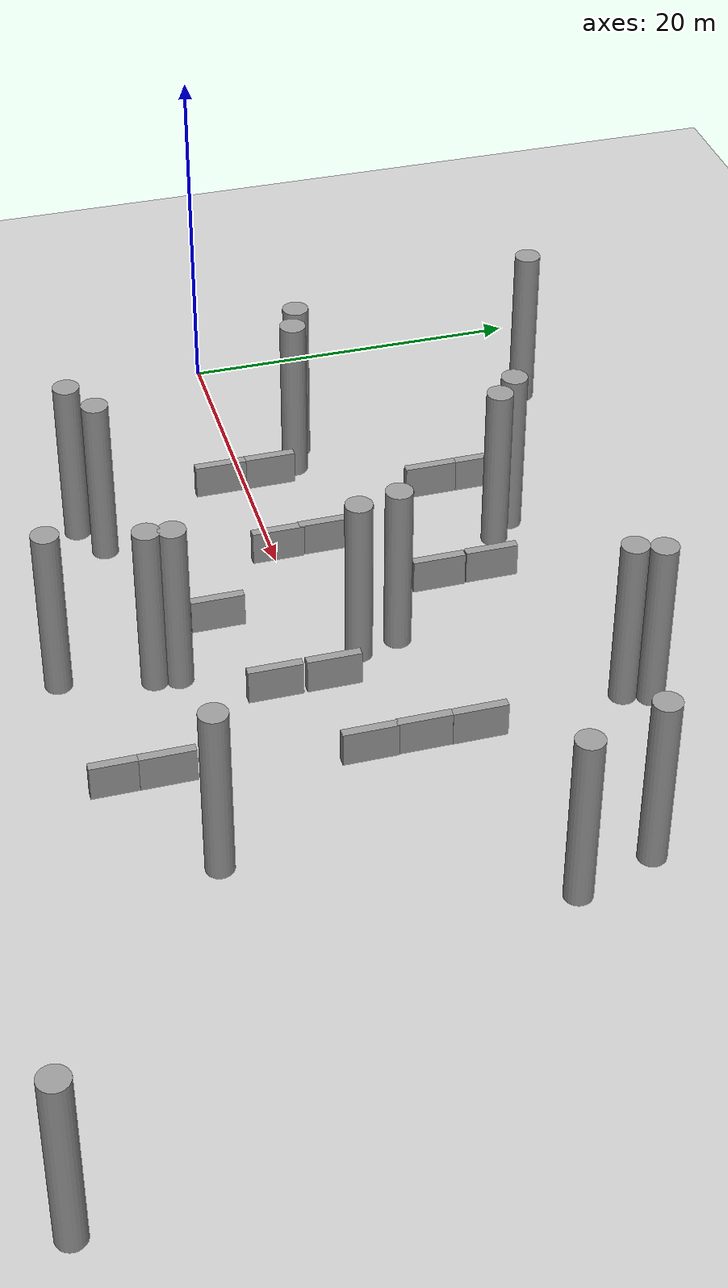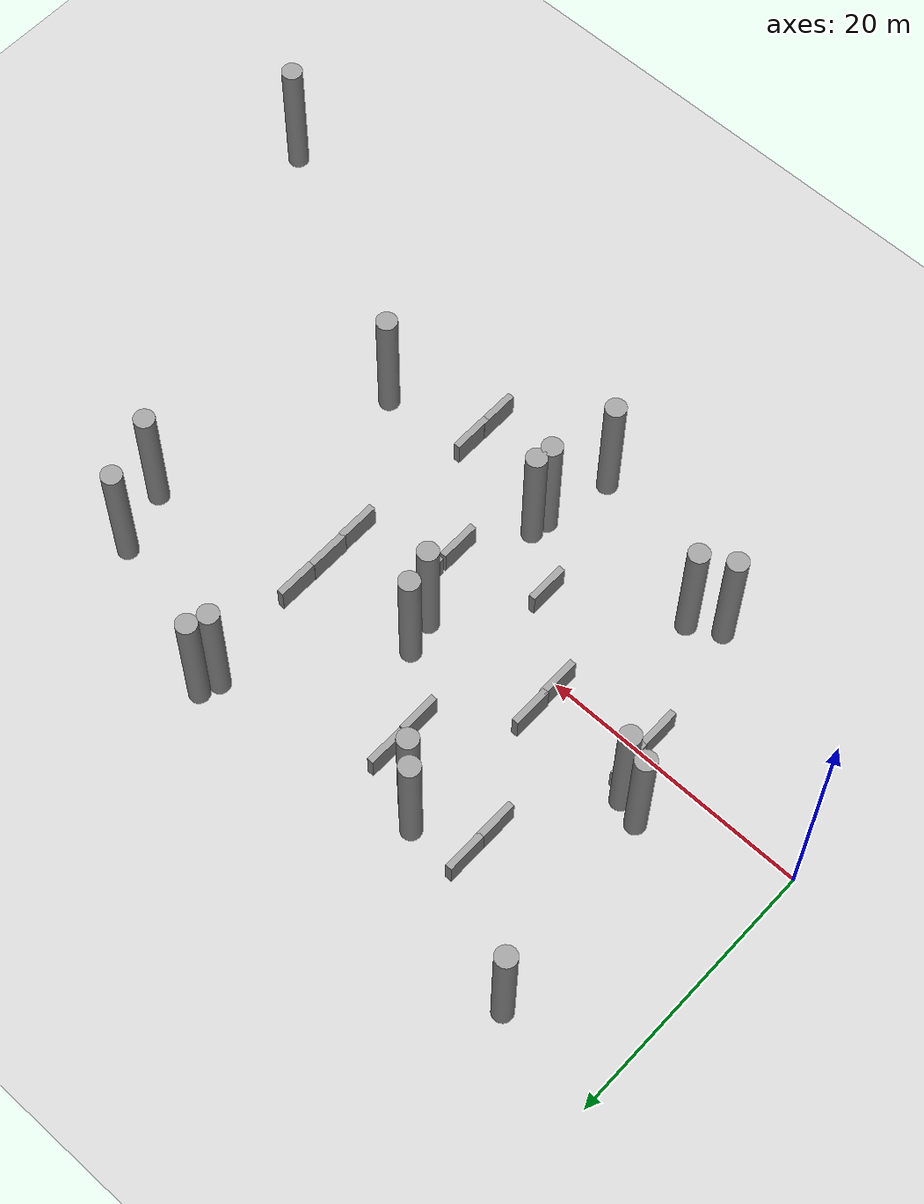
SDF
<sdf version="1.6">
 <world name="default">
  <light name="sun" type="directional">
   <pose>0 0 10 0 -0 0</pose>
   <diffuse>0.8 0.8 0.8 1</diffuse>
   <specular>0.2 0.2 0.2 1</specular>
   <attenuation>
    <range>1000</range>
    <constant>0.9</constant>
    <linear>0.01</linear>
    <quadratic>0.001</quadratic>
   </attenuation>
   <direction>-0.5 0.1 -0.9</direction>
  </light>
  <model name="ground_plane">
   <static>1</static>
   <link name="link">
    <collision name="collision">
     <geometry><plane><normal>0 0 1</normal><size>100 100</size></plane></geometry>
     <surface><friction><ode><mu>100</mu><mu2>50</mu2></ode></friction></surface>
    </collision>
    <visual name="visual">
     <cast_shadows>0</cast_shadows>
     <geometry><plane><normal>0 0 1</normal><size>100 100</size></plane></geometry>
     <material>
      <script><uri>file://media/materials/scripts/gazebo.material</uri><name>Gazebo/Grey</name></script>
     </material>
    </visual>
   </link>
  </model>
  <gravity>0 0 -9.8</gravity>
  <magnetic_field>6e-06 2.3e-05 -4.2e-05</magnetic_field>
  <atmosphere type="adiabatic"/>
  <physics name="default_physics" default="0" type="ode">
   <max_step_size>0.004</max_step_size>
   <real_time_factor>1</real_time_factor>
   <real_time_update_rate>250</real_time_update_rate>
  </physics>
  <scene><ambient>0.4 0.4 0.4 1</ambient><background>0.7 0.7 0.7 1</background><shadows>1</shadows></scene>
  <spherical_coordinates>
   <surface_model>EARTH_WGS84</surface_model>
   <latitude_deg>0</latitude_deg>
   <longitude_deg>0</longitude_deg>
   <elevation>0</elevation>
   <heading_deg>0</heading_deg>
  </spherical_coordinates>
  <model name="column">
   <pose>9.7957 3.93285 5 0 -0 0</pose>
   <static>1</static>
   <link name="link">
    <inertial>
     <mass>100</mass>
     <inertia><ixx>0.83</ixx><ixy>0</ixy><ixz>0</ixz><iyy>0.83</iyy><iyz>0</iyz><izz>0.83</izz></inertia>
    </inertial>
    <collision name="collision">
     <geometry><cylinder><radius>0.75</radius><length>10</length></cylinder></geometry>
    </collision>
    <visual name="visual">
     <geometry><cylinder><radius>0.75</radius><length>10</length></cylinder></geometry>
     <material>
      <script><uri>file://media/materials/scripts/gazebo.material</uri><name>Gazebo/Grey</name></script>
     </material>
    </visual>
   </link>
  </model>
  <model name="column_clone">
   <pose>14.3551 -10.3053 5 0 -0 0</pose>
   <static>1</static>
   <link name="link">
    <inertial>
     <mass>100</mass>
     <inertia><ixx>0.83</ixx><ixy>0</ixy><ixz>0</ixz><iyy>0.83</iyy><iyz>0</iyz><izz>0.83</izz></inertia>
    </inertial>
    <collision name="collision">
     <geometry><cylinder><radius>0.75</radius><length>10</length></cylinder></geometry>
    </collision>
    <visual name="visual">
     <geometry><cylinder><radius>0.75</radius><length>10</length></cylinder></geometry>
     <material>
      <script><uri>file://media/materials/scripts/gazebo.material</uri><name>Gazebo/Grey</name></script>
     </material>
    </visual>
   </link>
  </model>
  <model name="column_clone_0">
   <pose>29.1717 2.32204 5 0 -0 0</pose>
   <static>1</static>
   <link name="link">
    <inertial>
     <mass>100</mass>
     <inertia><ixx>0.83</ixx><ixy>0</ixy><ixz>0</ixz><iyy>0.83</iyy><iyz>0</iyz><izz>0.83</izz></inertia>
    </inertial>
    <collision name="collision">
     <geometry><cylinder><radius>0.75</radius><length>10</length></cylinder></geometry>
    </collision>
    <visual name="visual">
     <geometry><cylinder><radius>0.75</radius><length>10</length></cylinder></geometry>
     <material>
      <script><uri>file://media/materials/scripts/gazebo.material</uri><name>Gazebo/Grey</name></script>
     </material>
    </visual>
   </link>
  </model>
  <model name="column_clone_1">
   <pose>19.9886 13.8606 5 0 -0 0</pose>
   <static>1</static>
   <link name="link">
    <inertial>
     <mass>100</mass>
     <inertia><ixx>0.83</ixx><ixy>0</ixy><ixz>0</ixz><iyy>0.83</iyy><iyz>0</iyz><izz>0.83</izz></inertia>
    </inertial>
    <collision name="collision">
     <geometry><cylinder><radius>0.75</radius><length>10</length></cylinder></geometry>
    </collision>
    <visual name="visual">
     <geometry><cylinder><radius>0.75</radius><length>10</length></cylinder></geometry>
     <material>
      <script><uri>file://media/materials/scripts/gazebo.material</uri><name>Gazebo/Grey</name></script>
     </material>
    </visual>
   </link>
  </model>
  <model name="column_clone_2">
   <pose>42.9491 -8.52916 5 0 -0 0</pose>
   <static>1</static>
   <link name="link">
    <inertial>
     <mass>100</mass>
     <inertia><ixx>0.83</ixx><ixy>0</ixy><ixz>0</ixz><iyy>0.83</iyy><iyz>0</iyz><izz>0.83</izz></inertia>
    </inertial>
    <collision name="collision">
     <geometry><cylinder><radius>0.75</radius><length>10</length></cylinder></geometry>
    </collision>
    <visual name="visual">
     <geometry><cylinder><radius>0.75</radius><length>10</length></cylinder></geometry>
     <material>
      <script><uri>file://media/materials/scripts/gazebo.material</uri><name>Gazebo/Grey</name></script>
     </material>
    </visual>
   </link>
  </model>
  <model name="column_clone_3">
   <pose>47.8127 11.9571 5 0 -0 0</pose>
   <static>1</static>
   <link name="link">
    <inertial>
     <mass>100</mass>
     <inertia><ixx>0.83</ixx><ixy>0</ixy><ixz>0</ixz><iyy>0.83</iyy><iyz>0</iyz><izz>0.83</izz></inertia>
    </inertial>
    <collision name="collision">
     <geometry><cylinder><radius>0.75</radius><length>10</length></cylinder></geometry>
    </collision>
    <visual name="visual">
     <geometry><cylinder><radius>0.75</radius><length>10</length></cylinder></geometry>
     <material>
      <script><uri>file://media/materials/scripts/gazebo.material</uri><name>Gazebo/Grey</name></script>
     </material>
    </visual>
   </link>
  </model>
  <model name="column_clone_4">
   <pose>62.2158 -19.2973 5 0 -0 0</pose>
   <static>1</static>
   <link name="link">
    <inertial>
     <mass>100</mass>
     <inertia><ixx>0.83</ixx><ixy>0</ixy><ixz>0</ixz><iyy>0.83</iyy><iyz>0</iyz><izz>0.83</izz></inertia>
    </inertial>
    <collision name="collision">
     <geometry><cylinder><radius>0.75</radius><length>10</length></cylinder></geometry>
    </collision>
    <visual name="visual">
     <geometry><cylinder><radius>0.75</radius><length>10</length></cylinder></geometry>
     <material>
      <script><uri>file://media/materials/scripts/gazebo.material</uri><name>Gazebo/Grey</name></script>
     </material>
    </visual>
   </link>
  </model>
  <model name="column_clone_5">
   <pose>27.4165 -13.715 5 0 -0 0</pose>
   <static>1</static>
   <link name="link">
    <inertial>
     <mass>100</mass>
     <inertia><ixx>0.83</ixx><ixy>0</ixy><ixz>0</ixz><iyy>0.83</iyy><iyz>0</iyz><izz>0.83</izz></inertia>
    </inertial>
    <collision name="collision">
     <geometry><cylinder><radius>0.75</radius><length>10</length></cylinder></geometry>
    </collision>
    <visual name="visual">
     <geometry><cylinder><radius>0.75</radius><length>10</length></cylinder></geometry>
     <material>
      <script><uri>file://media/materials/scripts/gazebo.material</uri><name>Gazebo/Grey</name></script>
     </material>
    </visual>
   </link>
  </model>
  <model name="column_clone_6">
   <pose>7.71813 18.8171 5 0 -0 0</pose>
   <static>1</static>
   <link name="link">
    <inertial>
     <mass>100</mass>
     <inertia><ixx>0.83</ixx><ixy>0</ixy><ixz>0</ixz><iyy>0.83</iyy><iyz>0</iyz><izz>0.83</izz></inertia>
    </inertial>
    <collision name="collision">
     <geometry><cylinder><radius>0.75</radius><length>10</length></cylinder></geometry>
    </collision>
    <visual name="visual">
     <geometry><cylinder><radius>0.75</radius><length>10</length></cylinder></geometry>
     <material>
      <script><uri>file://media/materials/scripts/gazebo.material</uri><name>Gazebo/Grey</name></script>
     </material>
    </visual>
   </link>
  </model>
  <model name="column_clone_7">
   <pose>36.6896 16.2074 5 0 -0 0</pose>
   <static>1</static>
   <link name="link">
    <inertial>
     <mass>100</mass>
     <inertia><ixx>0.83</ixx><ixy>0</ixy><ixz>0</ixz><iyy>0.83</iyy><iyz>0</iyz><izz>0.83</izz></inertia>
    </inertial>
    <collision name="collision">
     <geometry><cylinder><radius>0.75</radius><length>10</length></cylinder></geometry>
    </collision>
    <visual name="visual">
     <geometry><cylinder><radius>0.75</radius><length>10</length></cylinder></geometry>
     <material>
      <script><uri>file://media/materials/scripts/gazebo.material</uri><name>Gazebo/Grey</name></script>
     </material>
    </visual>
   </link>
  </model>
  <model name="column_clone_8">
   <pose>49.3112 7.60163 5 0 -0 0</pose>
   <static>1</static>
   <link name="link">
    <inertial>
     <mass>100</mass>
     <inertia><ixx>0.83</ixx><ixy>0</ixy><ixz>0</ixz><iyy>0.83</iyy><iyz>0</iyz><izz>0.83</izz></inertia>
    </inertial>
    <collision name="collision">
     <geometry><cylinder><radius>0.75</radius><length>10</length></cylinder></geometry>
    </collision>
    <visual name="visual">
     <geometry><cylinder><radius>0.75</radius><length>10</length></cylinder></geometry>
     <material>
      <script><uri>file://media/materials/scripts/gazebo.material</uri><name>Gazebo/Grey</name></script>
     </material>
    </visual>
   </link>
  </model>
  <model name="column_clone_9">
   <pose>28.5952 4.66421 5 0 -0 0</pose>
   <static>1</static>
   <link name="link">
    <inertial>
     <mass>100</mass>
     <inertia><ixx>0.83</ixx><ixy>0</ixy><ixz>0</ixz><iyy>0.83</iyy><iyz>0</iyz><izz>0.83</izz></inertia>
    </inertial>
    <collision name="collision">
     <geometry><cylinder><radius>0.75</radius><length>10</length></cylinder></geometry>
    </collision>
    <visual name="visual">
     <geometry><cylinder><radius>0.75</radius><length>10</length></cylinder></geometry>
     <material>
      <script><uri>file://media/materials/scripts/gazebo.material</uri><name>Gazebo/Grey</name></script>
     </material>
    </visual>
   </link>
  </model>
  <model name="column_clone_10">
   <pose>16.5447 -9.11598 5 0 -0 0</pose>
   <static>1</static>
   <link name="link">
    <inertial>
     <mass>100</mass>
     <inertia><ixx>0.83</ixx><ixy>0</ixy><ixz>0</ixz><iyy>0.83</iyy><iyz>0</iyz><izz>0.83</izz></inertia>
    </inertial>
    <collision name="collision">
     <geometry><cylinder><radius>0.75</radius><length>10</length></cylinder></geometry>
    </collision>
    <visual name="visual">
     <geometry><cylinder><radius>0.75</radius><length>10</length></cylinder></geometry>
     <material>
      <script><uri>file://media/materials/scripts/gazebo.material</uri><name>Gazebo/Grey</name></script>
     </material>
    </visual>
   </link>
  </model>
  <model name="column_clone_11">
   <pose>11.5537 3.31779 5 0 -0 0</pose>
   <static>1</static>
   <link name="link">
    <inertial>
     <mass>100</mass>
     <inertia><ixx>0.83</ixx><ixy>0</ixy><ixz>0</ixz><iyy>0.83</iyy><iyz>0</iyz><izz>0.83</izz></inertia>
    </inertial>
    <collision name="collision">
     <geometry><cylinder><radius>0.75</radius><length>10</length></cylinder></geometry>
    </collision>
    <visual name="visual">
     <geometry><cylinder><radius>0.75</radius><length>10</length></cylinder></geometry>
     <material>
      <script><uri>file://media/materials/scripts/gazebo.material</uri><name>Gazebo/Grey</name></script>
     </material>
    </visual>
   </link>
  </model>
  <model name="wall">
   <pose>12.5913 1.48183 1 0 -0 0</pose>
   <static>1</static>
   <link name="link">
    <inertial>
     <mass>100</mass>
     <inertia><ixx>0.83</ixx><ixy>0</ixy><ixz>0</ixz><iyy>0.83</iyy><iyz>0</iyz><izz>0.83</izz></inertia>
    </inertial>
    <collision name="collision"><geometry><box><size>0.5 3 2</size></box></geometry></collision>
    <visual name="visual">
     <geometry><box><size>0.5 3 2</size></box></geometry>
     <material>
      <script><uri>file://media/materials/scripts/gazebo.material</uri><name>Gazebo/Grey</name></script>
     </material>
    </visual>
   </link>
  </model>
  <model name="wall_clone">
   <pose>12.605 -1.4504 1 0 -0 0</pose>
   <static>1</static>
   <link name="link">
    <inertial>
     <mass>100</mass>
     <inertia><ixx>0.83</ixx><ixy>0</ixy><ixz>0</ixz><iyy>0.83</iyy><iyz>0</iyz><izz>0.83</izz></inertia>
    </inertial>
    <collision name="collision"><geometry><box><size>0.5 3 2</size></box></geometry></collision>
    <visual name="visual">
     <geometry><box><size>0.5 3 2</size></box></geometry>
     <material>
      <script><uri>file://media/materials/scripts/gazebo.material</uri><name>Gazebo/Grey</name></script>
     </material>
    </visual>
   </link>
  </model>
  <model name="wall_clone_0">
   <pose>19.6301 2.98088 1 0 -0 0</pose>
   <static>1</static>
   <link name="link">
    <inertial>
     <mass>100</mass>
     <inertia><ixx>0.83</ixx><ixy>0</ixy><ixz>0</ixz><iyy>0.83</iyy><iyz>0</iyz><izz>0.83</izz></inertia>
    </inertial>
    <collision name="collision"><geometry><box><size>0.5 3 2</size></box></geometry></collision>
    <visual name="visual">
     <geometry><box><size>0.5 3 2</size></box></geometry>
     <material>
      <script><uri>file://media/materials/scripts/gazebo.material</uri><name>Gazebo/Grey</name></script>
     </material>
    </visual>
   </link>
  </model>
  <model name="wall_clone_1">
   <pose>19.691 0.236634 1 0 -0 0</pose>
   <static>1</static>
   <link name="link">
    <inertial>
     <mass>100</mass>
     <inertia><ixx>0.83</ixx><ixy>0</ixy><ixz>0</ixz><iyy>0.83</iyy><iyz>0</iyz><izz>0.83</izz></inertia>
    </inertial>
    <collision name="collision"><geometry><box><size>0.5 3 2</size></box></geometry></collision>
    <visual name="visual">
     <geometry><box><size>0.5 3 2</size></box></geometry>
     <material>
      <script><uri>file://media/materials/scripts/gazebo.material</uri><name>Gazebo/Grey</name></script>
     </material>
    </visual>
   </link>
  </model>
  <model name="wall_clone_2">
   <pose>24.7909 -4.45233 1 0 -0 0</pose>
   <static>1</static>
   <link name="link">
    <inertial>
     <mass>100</mass>
     <inertia><ixx>0.83</ixx><ixy>0</ixy><ixz>0</ixz><iyy>0.83</iyy><iyz>0</iyz><izz>0.83</izz></inertia>
    </inertial>
    <collision name="collision"><geometry><box><size>0.5 3 2</size></box></geometry></collision>
    <visual name="visual">
     <geometry><box><size>0.5 3 2</size></box></geometry>
     <material>
      <script><uri>file://media/materials/scripts/gazebo.material</uri><name>Gazebo/Grey</name></script>
     </material>
    </visual>
   </link>
  </model>
  <model name="wall_clone_3">
   <pose>31.2635 -2.82774 1 0 -0 0</pose>
   <static>1</static>
   <link name="link">
    <inertial>
     <mass>100</mass>
     <inertia><ixx>0.83</ixx><ixy>0</ixy><ixz>0</ixz><iyy>0.83</iyy><iyz>0</iyz><izz>0.83</izz></inertia>
    </inertial>
    <collision name="collision"><geometry><box><size>0.5 3 2</size></box></geometry></collision>
    <visual name="visual">
     <geometry><box><size>0.5 3 2</size></box></geometry>
     <material>
      <script><uri>file://media/materials/scripts/gazebo.material</uri><name>Gazebo/Grey</name></script>
     </material>
    </visual>
   </link>
  </model>
  <model name="wall_clone_4">
   <pose>31.25 0.367878 1 0 -0 0</pose>
   <static>1</static>
   <link name="link">
    <inertial>
     <mass>100</mass>
     <inertia><ixx>0.83</ixx><ixy>0</ixy><ixz>0</ixz><iyy>0.83</iyy><iyz>0</iyz><izz>0.83</izz></inertia>
    </inertial>
    <collision name="collision"><geometry><box><size>0.5 3 2</size></box></geometry></collision>
    <visual name="visual">
     <geometry><box><size>0.5 3 2</size></box></geometry>
     <material>
      <script><uri>file://media/materials/scripts/gazebo.material</uri><name>Gazebo/Grey</name></script>
     </material>
    </visual>
   </link>
  </model>
  <model name="wall_clone_5">
   <pose>37.1998 3.5539 1 0 -0 0</pose>
   <static>1</static>
   <link name="link">
    <inertial>
     <mass>100</mass>
     <inertia><ixx>0.83</ixx><ixy>0</ixy><ixz>0</ixz><iyy>0.83</iyy><iyz>0</iyz><izz>0.83</izz></inertia>
    </inertial>
    <collision name="collision"><geometry><box><size>0.5 3 2</size></box></geometry></collision>
    <visual name="visual">
     <geometry><box><size>0.5 3 2</size></box></geometry>
     <material>
      <script><uri>file://media/materials/scripts/gazebo.material</uri><name>Gazebo/Grey</name></script>
     </material>
    </visual>
   </link>
  </model>
  <model name="wall_clone_6">
   <pose>37.2461 0.656941 1 0 -0 0</pose>
   <static>1</static>
   <link name="link">
    <inertial>
     <mass>100</mass>
     <inertia><ixx>0.83</ixx><ixy>0</ixy><ixz>0</ixz><iyy>0.83</iyy><iyz>0</iyz><izz>0.83</izz></inertia>
    </inertial>
    <collision name="collision"><geometry><box><size>0.5 3 2</size></box></geometry></collision>
    <visual name="visual">
     <geometry><box><size>0.5 3 2</size></box></geometry>
     <material>
      <script><uri>file://media/materials/scripts/gazebo.material</uri><name>Gazebo/Grey</name></script>
     </material>
    </visual>
   </link>
  </model>
  <model name="wall_clone_7">
   <pose>37.217 6.53427 1 0 -0 0</pose>
   <static>1</static>
   <link name="link">
    <inertial>
     <mass>100</mass>
     <inertia><ixx>0.83</ixx><ixy>0</ixy><ixz>0</ixz><iyy>0.83</iyy><iyz>0</iyz><izz>0.83</izz></inertia>
    </inertial>
    <collision name="collision"><geometry><box><size>0.5 3 2</size></box></geometry></collision>
    <visual name="visual">
     <geometry><box><size>0.5 3 2</size></box></geometry>
     <material>
      <script><uri>file://media/materials/scripts/gazebo.material</uri><name>Gazebo/Grey</name></script>
     </material>
    </visual>
   </link>
  </model>
  <model name="wall_clone_8">
   <pose>24.5498 11.2789 1 0 -0 0</pose>
   <static>1</static>
   <link name="link">
    <inertial>
     <mass>100</mass>
     <inertia><ixx>0.83</ixx><ixy>0</ixy><ixz>0</ixz><iyy>0.83</iyy><iyz>0</iyz><izz>0.83</izz></inertia>
    </inertial>
    <collision name="collision"><geometry><box><size>0.5 3 2</size></box></geometry></collision>
    <visual name="visual">
     <geometry><box><size>0.5 3 2</size></box></geometry>
     <material>
      <script><uri>file://media/materials/scripts/gazebo.material</uri><name>Gazebo/Grey</name></script>
     </material>
    </visual>
   </link>
  </model>
  <model name="wall_clone_9">
   <pose>24.6084 8.20697 1 0 -0 0</pose>
   <static>1</static>
   <link name="link">
    <inertial>
     <mass>100</mass>
     <inertia><ixx>0.83</ixx><ixy>0</ixy><ixz>0</ixz><iyy>0.83</iyy><iyz>0</iyz><izz>0.83</izz></inertia>
    </inertial>
    <collision name="collision"><geometry><box><size>0.5 3 2</size></box></geometry></collision>
    <visual name="visual">
     <geometry><box><size>0.5 3 2</size></box></geometry>
     <material>
      <script><uri>file://media/materials/scripts/gazebo.material</uri><name>Gazebo/Grey</name></script>
     </material>
    </visual>
   </link>
  </model>
  <model name="wall_clone_10">
   <pose>16.0071 13.2042 1 0 -0 0</pose>
   <static>1</static>
   <link name="link">
    <inertial>
     <mass>100</mass>
     <inertia><ixx>0.83</ixx><ixy>0</ixy><ixz>0</ixz><iyy>0.83</iyy><iyz>0</iyz><izz>0.83</izz></inertia>
    </inertial>
    <collision name="collision"><geometry><box><size>0.5 3 2</size></box></geometry></collision>
    <visual name="visual">
     <geometry><box><size>0.5 3 2</size></box></geometry>
     <material>
      <script><uri>file://media/materials/scripts/gazebo.material</uri><name>Gazebo/Grey</name></script>
     </material>
    </visual>
   </link>
  </model>
  <model name="wall_clone_11">
   <pose>16.0076 10.347 1 0 -0 0</pose>
   <static>1</static>
   <link name="link">
    <inertial>
     <mass>100</mass>
     <inertia><ixx>0.83</ixx><ixy>0</ixy><ixz>0</ixz><iyy>0.83</iyy><iyz>0</iyz><izz>0.83</izz></inertia>
    </inertial>
    <collision name="collision"><geometry><box><size>0.5 3 2</size></box></geometry></collision>
    <visual name="visual">
     <geometry><box><size>0.5 3 2</size></box></geometry>
     <material>
      <script><uri>file://media/materials/scripts/gazebo.material</uri><name>Gazebo/Grey</name></script>
     </material>
    </visual>
   </link>
  </model>
  <model name="wall_clone_12">
   <pose>36.2948 -9.66103 1 0 -0 0</pose>
   <static>1</static>
   <link name="link">
    <inertial>
     <mass>100</mass>
     <inertia><ixx>0.83</ixx><ixy>0</ixy><ixz>0</ixz><iyy>0.83</iyy><iyz>0</iyz><izz>0.83</izz></inertia>
    </inertial>
    <collision name="collision"><geometry><box><size>0.5 3 2</size></box></geometry></collision>
    <visual name="visual">
     <geometry><box><size>0.5 3 2</size></box></geometry>
     <material>
      <script><uri>file://media/materials/scripts/gazebo.material</uri><name>Gazebo/Grey</name></script>
     </material>
    </visual>
   </link>
  </model>
  <model name="wall_clone_13">
   <pose>36.2865 -12.1989 1 0 -0 0</pose>
   <static>1</static>
   <link name="link">
    <inertial>
     <mass>100</mass>
     <inertia><ixx>0.83</ixx><ixy>0</ixy><ixz>0</ixz><iyy>0.83</iyy><iyz>0</iyz><izz>0.83</izz></inertia>
    </inertial>
    <collision name="collision"><geometry><box><size>0.5 3 2</size></box></geometry></collision>
    <visual name="visual">
     <geometry><box><size>0.5 3 2</size></box></geometry>
     <material>
      <script><uri>file://media/materials/scripts/gazebo.material</uri><name>Gazebo/Grey</name></script>
     </material>
    </visual>
   </link>
  </model>
  <model name="column_clone_5_clone">
   <pose>28.6866 -7.40752 5 0 -0 0</pose>
   <static>1</static>
   <link name="link">
    <inertial>
     <mass>100</mass>
     <inertia><ixx>0.83</ixx><ixy>0</ixy><ixz>0</ixz><iyy>0.83</iyy><iyz>0</iyz><izz>0.83</izz></inertia>
    </inertial>
    <collision name="collision">
     <geometry><cylinder><radius>0.75</radius><length>10</length></cylinder></geometry>
    </collision>
    <visual name="visual">
     <geometry><cylinder><radius>0.75</radius><length>10</length></cylinder></geometry>
     <material>
      <script><uri>file://media/materials/scripts/gazebo.material</uri><name>Gazebo/Grey</name></script>
     </material>
    </visual>
   </link>
  </model>
  <model name="column_clone_5_clone_0">
   <pose>28.5008 -8.71652 5 0 -0 0</pose>
   <static>1</static>
   <link name="link">
    <inertial>
     <mass>100</mass>
     <inertia><ixx>0.83</ixx><ixy>0</ixy><ixz>0</ixz><iyy>0.83</iyy><iyz>0</iyz><izz>0.83</izz></inertia>
    </inertial>
    <collision name="collision">
     <geometry><cylinder><radius>0.75</radius><length>10</length></cylinder></geometry>
    </collision>
    <visual name="visual">
     <geometry><cylinder><radius>0.75</radius><length>10</length></cylinder></geometry>
     <material>
      <script><uri>file://media/materials/scripts/gazebo.material</uri><name>Gazebo/Grey</name></script>
     </material>
    </visual>
   </link>
  </model>
  <model name="column_clone_5_clone_1">
   <pose>36.1866 14.8099 5 0 -0 0</pose>
   <static>1</static>
   <link name="link">
    <inertial>
     <mass>100</mass>
     <inertia><ixx>0.83</ixx><ixy>0</ixy><ixz>0</ixz><iyy>0.83</iyy><iyz>0</iyz><izz>0.83</izz></inertia>
    </inertial>
    <collision name="collision">
     <geometry><cylinder><radius>0.75</radius><length>10</length></cylinder></geometry>
    </collision>
    <visual name="visual">
     <geometry><cylinder><radius>0.75</radius><length>10</length></cylinder></geometry>
     <material>
      <script><uri>file://media/materials/scripts/gazebo.material</uri><name>Gazebo/Grey</name></script>
     </material>
    </visual>
   </link>
  </model>
  <model name="column_clone_5_clone_2">
   <pose>21.3198 12.5823 5 0 -0 0</pose>
   <static>1</static>
   <link name="link">
    <inertial>
     <mass>100</mass>
     <inertia><ixx>0.83</ixx><ixy>0</ixy><ixz>0</ixz><iyy>0.83</iyy><iyz>0</iyz><izz>0.83</izz></inertia>
    </inertial>
    <collision name="collision">
     <geometry><cylinder><radius>0.75</radius><length>10</length></cylinder></geometry>
    </collision>
    <visual name="visual">
     <geometry><cylinder><radius>0.75</radius><length>10</length></cylinder></geometry>
     <material>
      <script><uri>file://media/materials/scripts/gazebo.material</uri><name>Gazebo/Grey</name></script>
     </material>
    </visual>
   </link>
  </model>
 </world>
</sdf>
